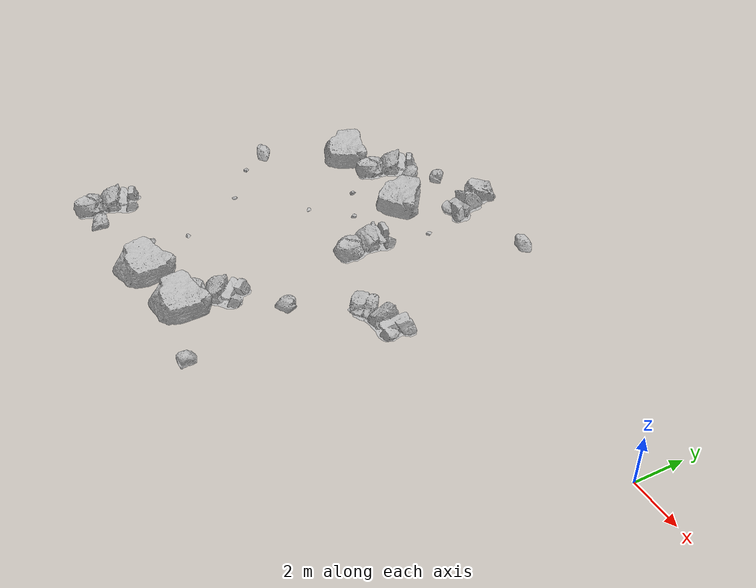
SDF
<sdf version="1.7">
 <world name="marsyard">
  <model name="Rock_1">
   <static>true</static>
   <pose>-6.7210 -5.6405 4.0000 0.0000 0.0000 0.3013</pose>
   <link name="link">
    <visual name="visual">
     <geometry><mesh><uri>package://rock_generator/rocks_ws/rock_2/meshes/rock_2.stl</uri></mesh></geometry>
    </visual>
    <collision name="collision">
     <geometry><mesh><uri>package://rock_generator/rocks_ws/rock_2/meshes/rock_2.stl</uri></mesh></geometry>
    </collision>
   </link>
  </model>
  <model name="Rock_4">
   <static>true</static>
   <pose>-13.2215 0.4944 4.0000 0.0000 0.0000 0.2615</pose>
   <link name="link">
    <visual name="visual">
     <geometry><mesh><uri>package://rock_generator/rocks_ws/rock_3/meshes/rock_3.stl</uri></mesh></geometry>
    </visual>
    <collision name="collision">
     <geometry><mesh><uri>package://rock_generator/rocks_ws/rock_3/meshes/rock_3.stl</uri></mesh></geometry>
    </collision>
   </link>
  </model>
  <model name="Rock_19">
   <static>true</static>
   <pose>-8.6674 -7.9971 4.0000 0.0000 0.0000 1.5026</pose>
   <link name="link">
    <visual name="visual">
     <geometry><mesh><uri>package://rock_generator/rocks_ws/rock_3/meshes/rock_3.stl</uri></mesh></geometry>
    </visual>
    <collision name="collision">
     <geometry><mesh><uri>package://rock_generator/rocks_ws/rock_3/meshes/rock_3.stl</uri></mesh></geometry>
    </collision>
   </link>
  </model>
  <model name="Rock_21">
   <static>true</static>
   <pose>-12.4442 -3.5490 4.0000 0.0000 0.0000 1.1319</pose>
   <link name="link">
    <visual name="visual">
     <geometry><mesh><uri>package://rock_generator/rocks_ws/rock_9/meshes/rock_9.stl</uri></mesh></geometry>
    </visual>
    <collision name="collision">
     <geometry><mesh><uri>package://rock_generator/rocks_ws/rock_9/meshes/rock_9.stl</uri></mesh></geometry>
    </collision>
   </link>
  </model>
  <model name="Rock_26">
   <static>true</static>
   <pose>-10.4595 -4.1939 4.0000 0.0000 0.0000 1.7789</pose>
   <link name="link">
    <visual name="visual">
     <geometry><mesh><uri>package://rock_generator/rocks_ws/rock_2/meshes/rock_2.stl</uri></mesh></geometry>
    </visual>
    <collision name="collision">
     <geometry><mesh><uri>package://rock_generator/rocks_ws/rock_2/meshes/rock_2.stl</uri></mesh></geometry>
    </collision>
   </link>
  </model>
  <model name="Rock_29">
   <static>true</static>
   <pose>-14.7162 -0.9813 4.0000 0.0000 0.0000 1.3631</pose>
   <link name="link">
    <visual name="visual">
     <geometry><mesh><uri>package://rock_generator/rocks_ws/rock_2/meshes/rock_2.stl</uri></mesh></geometry>
    </visual>
    <collision name="collision">
     <geometry><mesh><uri>package://rock_generator/rocks_ws/rock_2/meshes/rock_2.stl</uri></mesh></geometry>
    </collision>
   </link>
  </model>
  <model name="Rock_34">
   <static>true</static>
   <pose>-7.8580 0.7186 4.0000 0.0000 0.0000 -2.3213</pose>
   <link name="link">
    <visual name="visual">
     <geometry><mesh><uri>package://rock_generator/rocks_ws/rock_3/meshes/rock_3.stl</uri></mesh></geometry>
    </visual>
    <collision name="collision">
     <geometry><mesh><uri>package://rock_generator/rocks_ws/rock_3/meshes/rock_3.stl</uri></mesh></geometry>
    </collision>
   </link>
  </model>
  <model name="Rock_47">
   <static>true</static>
   <pose>-17.9450 -4.8007 4.0000 0.0000 0.0000 -2.6382</pose>
   <link name="link">
    <visual name="visual">
     <geometry><mesh><uri>package://rock_generator/rocks_ws/rock_3/meshes/rock_3.stl</uri></mesh></geometry>
    </visual>
    <collision name="collision">
     <geometry><mesh><uri>package://rock_generator/rocks_ws/rock_3/meshes/rock_3.stl</uri></mesh></geometry>
    </collision>
   </link>
  </model>
  <model name="Rock_52">
   <static>true</static>
   <pose>-14.0644 -9.3784 4.0000 0.0000 0.0000 -0.5261</pose>
   <link name="link">
    <visual name="visual">
     <geometry><mesh><uri>package://rock_generator/rocks_ws/rock_7/meshes/rock_7.stl</uri></mesh></geometry>
    </visual>
    <collision name="collision">
     <geometry><mesh><uri>package://rock_generator/rocks_ws/rock_7/meshes/rock_7.stl</uri></mesh></geometry>
    </collision>
   </link>
  </model>
  <model name="Rock_85">
   <static>true</static>
   <pose>-17.3269 -5.7747 4.0000 0.0000 0.0000 0.7472</pose>
   <link name="link">
    <visual name="visual">
     <geometry><mesh><uri>package://rock_generator/rocks_ws/rock_9/meshes/rock_9.stl</uri></mesh></geometry>
    </visual>
    <collision name="collision">
     <geometry><mesh><uri>package://rock_generator/rocks_ws/rock_9/meshes/rock_9.stl</uri></mesh></geometry>
    </collision>
   </link>
  </model>
  <model name="Rock_99">
   <static>true</static>
   <pose>-13.8857 -2.8548 4.0000 0.0000 0.0000 1.9322</pose>
   <link name="link">
    <visual name="visual">
     <geometry><mesh><uri>package://rock_generator/rocks_ws/rock_9/meshes/rock_9.stl</uri></mesh></geometry>
    </visual>
    <collision name="collision">
     <geometry><mesh><uri>package://rock_generator/rocks_ws/rock_9/meshes/rock_9.stl</uri></mesh></geometry>
    </collision>
   </link>
  </model>
  <model name="Rock_100">
   <static>true</static>
   <pose>-11.1574 0.6481 4.0000 0.0000 0.0000 -1.1611</pose>
   <link name="link">
    <visual name="visual">
     <geometry><mesh><uri>package://rock_generator/rocks_ws/rock_2/meshes/rock_2.stl</uri></mesh></geometry>
    </visual>
    <collision name="collision">
     <geometry><mesh><uri>package://rock_generator/rocks_ws/rock_2/meshes/rock_2.stl</uri></mesh></geometry>
    </collision>
   </link>
  </model>
  <model name="Rock_110">
   <static>true</static>
   <pose>-17.2092 -11.3951 4.0000 0.0000 0.0000 1.5411</pose>
   <link name="link">
    <visual name="visual">
     <geometry><mesh><uri>package://rock_generator/rocks_ws/rock_2/meshes/rock_2.stl</uri></mesh></geometry>
    </visual>
    <collision name="collision">
     <geometry><mesh><uri>package://rock_generator/rocks_ws/rock_2/meshes/rock_2.stl</uri></mesh></geometry>
    </collision>
   </link>
  </model>
  <model name="Rock_119">
   <static>true</static>
   <pose>-16.1307 -11.9928 4.0000 0.0000 0.0000 2.5761</pose>
   <link name="link">
    <visual name="visual">
     <geometry><mesh><uri>package://rock_generator/rocks_ws/rock_3/meshes/rock_3.stl</uri></mesh></geometry>
    </visual>
    <collision name="collision">
     <geometry><mesh><uri>package://rock_generator/rocks_ws/rock_3/meshes/rock_3.stl</uri></mesh></geometry>
    </collision>
   </link>
  </model>
  <model name="Rock_120">
   <static>true</static>
   <pose>-13.6197 -4.8264 4.0000 0.0000 0.0000 -1.0995</pose>
   <link name="link">
    <visual name="visual">
     <geometry><mesh><uri>package://rock_generator/rocks_ws/rock_7/meshes/rock_7.stl</uri></mesh></geometry>
    </visual>
    <collision name="collision">
     <geometry><mesh><uri>package://rock_generator/rocks_ws/rock_7/meshes/rock_7.stl</uri></mesh></geometry>
    </collision>
   </link>
  </model>
  <model name="Rock_127">
   <static>true</static>
   <pose>-12.4868 -11.3379 4.0000 0.0000 0.0000 -0.6267</pose>
   <link name="link">
    <visual name="visual">
     <geometry><mesh><uri>package://rock_generator/rocks_ws/rock_1/meshes/rock_1.stl</uri></mesh></geometry>
    </visual>
    <collision name="collision">
     <geometry><mesh><uri>package://rock_generator/rocks_ws/rock_1/meshes/rock_1.stl</uri></mesh></geometry>
    </collision>
   </link>
  </model>
  <model name="Rock_128">
   <static>true</static>
   <pose>-10.4104 -3.1874 4.0000 0.0000 0.0000 -2.9321</pose>
   <link name="link">
    <visual name="visual">
     <geometry><mesh><uri>package://rock_generator/rocks_ws/rock_9/meshes/rock_9.stl</uri></mesh></geometry>
    </visual>
    <collision name="collision">
     <geometry><mesh><uri>package://rock_generator/rocks_ws/rock_9/meshes/rock_9.stl</uri></mesh></geometry>
    </collision>
   </link>
  </model>
  <model name="Rock_129">
   <static>true</static>
   <pose>-16.0646 -1.8812 4.0000 0.0000 0.0000 -1.2883</pose>
   <link name="link">
    <visual name="visual">
     <geometry><mesh><uri>package://rock_generator/rocks_ws/rock_1/meshes/rock_1.stl</uri></mesh></geometry>
    </visual>
    <collision name="collision">
     <geometry><mesh><uri>package://rock_generator/rocks_ws/rock_1/meshes/rock_1.stl</uri></mesh></geometry>
    </collision>
   </link>
  </model>
  <model name="Rock_133">
   <static>true</static>
   <pose>-10.1772 -1.7023 4.0000 0.0000 0.0000 0.7094</pose>
   <link name="link">
    <visual name="visual">
     <geometry><mesh><uri>package://rock_generator/rocks_ws/rock_9/meshes/rock_9.stl</uri></mesh></geometry>
    </visual>
    <collision name="collision">
     <geometry><mesh><uri>package://rock_generator/rocks_ws/rock_9/meshes/rock_9.stl</uri></mesh></geometry>
    </collision>
   </link>
  </model>
  <model name="Rock_135">
   <static>true</static>
   <pose>-10.0785 -10.9410 4.0000 0.0000 0.0000 -0.7747</pose>
   <link name="link">
    <visual name="visual">
     <geometry><mesh><uri>package://rock_generator/rocks_ws/rock_1/meshes/rock_1.stl</uri></mesh></geometry>
    </visual>
    <collision name="collision">
     <geometry><mesh><uri>package://rock_generator/rocks_ws/rock_1/meshes/rock_1.stl</uri></mesh></geometry>
    </collision>
   </link>
  </model>
  <model name="Rock_137">
   <static>true</static>
   <pose>-15.6316 -6.9437 4.0000 0.0000 0.0000 -2.7472</pose>
   <link name="link">
    <visual name="visual">
     <geometry><mesh><uri>package://rock_generator/rocks_ws/rock_7/meshes/rock_7.stl</uri></mesh></geometry>
    </visual>
    <collision name="collision">
     <geometry><mesh><uri>package://rock_generator/rocks_ws/rock_7/meshes/rock_7.stl</uri></mesh></geometry>
    </collision>
   </link>
  </model>
  <model name="Rock_147">
   <static>true</static>
   <pose>-11.2327 -0.1656 4.0000 0.0000 0.0000 2.8764</pose>
   <link name="link">
    <visual name="visual">
     <geometry><mesh><uri>package://rock_generator/rocks_ws/rock_9/meshes/rock_9.stl</uri></mesh></geometry>
    </visual>
    <collision name="collision">
     <geometry><mesh><uri>package://rock_generator/rocks_ws/rock_9/meshes/rock_9.stl</uri></mesh></geometry>
    </collision>
   </link>
  </model>
  <model name="Rock_155">
   <static>true</static>
   <pose>-13.9178 -0.3695 4.0000 0.0000 0.0000 1.9064</pose>
   <link name="link">
    <visual name="visual">
     <geometry><mesh><uri>package://rock_generator/rocks_ws/rock_3/meshes/rock_3.stl</uri></mesh></geometry>
    </visual>
    <collision name="collision">
     <geometry><mesh><uri>package://rock_generator/rocks_ws/rock_3/meshes/rock_3.stl</uri></mesh></geometry>
    </collision>
   </link>
  </model>
  <model name="Rock_158">
   <static>true</static>
   <pose>-7.5741 -11.7462 4.0000 0.0000 0.0000 -0.5302</pose>
   <link name="link">
    <visual name="visual">
     <geometry><mesh><uri>package://rock_generator/rocks_ws/rock_3/meshes/rock_3.stl</uri></mesh></geometry>
    </visual>
    <collision name="collision">
     <geometry><mesh><uri>package://rock_generator/rocks_ws/rock_3/meshes/rock_3.stl</uri></mesh></geometry>
    </collision>
   </link>
  </model>
  <model name="Rock_165">
   <static>true</static>
   <pose>-11.9772 -1.7406 4.0000 0.0000 0.0000 -1.7311</pose>
   <link name="link">
    <visual name="visual">
     <geometry><mesh><uri>package://rock_generator/rocks_ws/rock_1/meshes/rock_1.stl</uri></mesh></geometry>
    </visual>
    <collision name="collision">
     <geometry><mesh><uri>package://rock_generator/rocks_ws/rock_1/meshes/rock_1.stl</uri></mesh></geometry>
    </collision>
   </link>
  </model>
  <model name="Rock_166">
   <static>true</static>
   <pose>-10.3315 -9.9791 4.0000 0.0000 0.0000 1.1433</pose>
   <link name="link">
    <visual name="visual">
     <geometry><mesh><uri>package://rock_generator/rocks_ws/rock_2/meshes/rock_2.stl</uri></mesh></geometry>
    </visual>
    <collision name="collision">
     <geometry><mesh><uri>package://rock_generator/rocks_ws/rock_2/meshes/rock_2.stl</uri></mesh></geometry>
    </collision>
   </link>
  </model>
  <model name="Rock_167">
   <static>true</static>
   <pose>-14.3620 -10.5922 4.0000 0.0000 0.0000 -1.7988</pose>
   <link name="link">
    <visual name="visual">
     <geometry><mesh><uri>package://rock_generator/rocks_ws/rock_9/meshes/rock_9.stl</uri></mesh></geometry>
    </visual>
    <collision name="collision">
     <geometry><mesh><uri>package://rock_generator/rocks_ws/rock_9/meshes/rock_9.stl</uri></mesh></geometry>
    </collision>
   </link>
  </model>
 </world>
</sdf>
